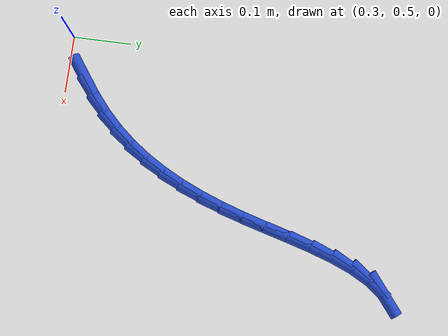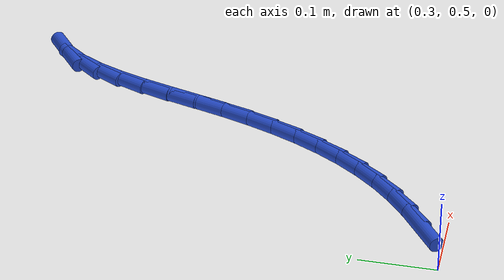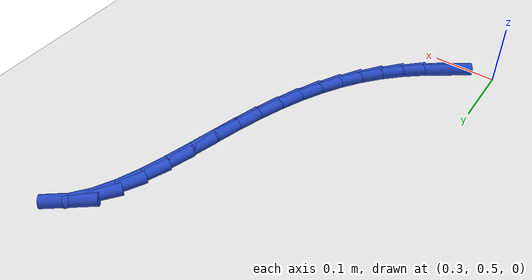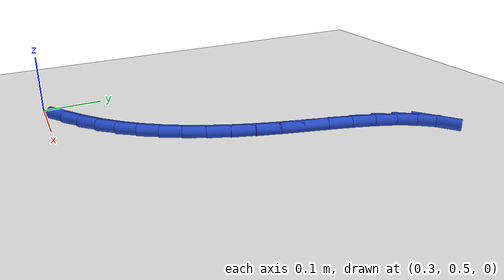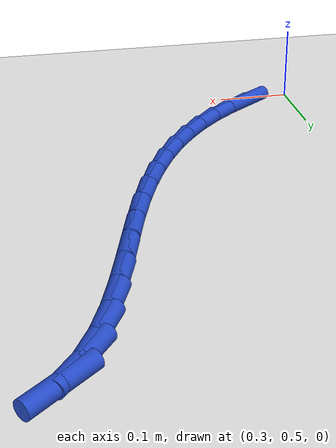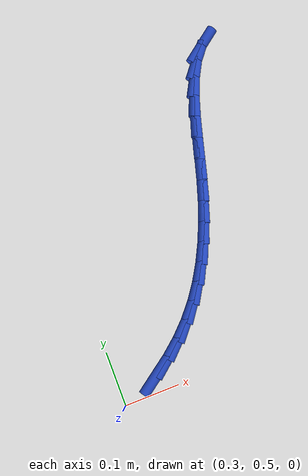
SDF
<sdf version="1.6">
 <world name="default">
  <model name="ground_plane">
   <static>1</static>
   <link name="link">
    <collision name="collision">
     <geometry><plane><normal>0 0 1</normal><size>100 100</size></plane></geometry>
     <surface><friction><ode><mu>100</mu><mu2>50</mu2></ode></friction></surface>
    </collision>
    <visual name="visual">
     <cast_shadows>0</cast_shadows>
     <geometry><plane><normal>0 0 1</normal><size>100 100</size></plane></geometry>
     <material>
      <script><uri>file://media/materials/scripts/gazebo.material</uri><name>Gazebo/WhiteGlow</name></script>
     </material>
    </visual>
   </link>
  </model>
  <model name="line">
   <link name="link_19">
    <pose>0.36988870935078455 0.5301280323944216 0.01 0 1.57 0.6141338083603641</pose>
    <collision name="collision">
     <geometry><cylinder><radius>0.01</radius><length>0.08</length></cylinder></geometry>
    </collision>
    <visual name="visual">
     <material>
      <script><name>Gazebo/Blue</name><uri>file://media/materials/scripts/gazebo.material</uri></script>
     </material>
     <geometry><cylinder><radius>0.01</radius><length>0.08</length></cylinder></geometry>
    </visual>
   </link>
   <link name="link_20">
    <pose>0.4005343756664804 0.5517359806297175 0.01 0 1.57 0.6838467115630937</pose>
    <collision name="collision">
     <geometry><cylinder><radius>0.01</radius><length>0.08</length></cylinder></geometry>
    </collision>
    <visual name="visual">
     <material>
      <script><name>Gazebo/Blue</name><uri>file://media/materials/scripts/gazebo.material</uri></script>
     </material>
     <geometry><cylinder><radius>0.01</radius><length>0.08</length></cylinder></geometry>
    </visual>
   </link>
   <link name="link_21">
    <pose>0.42903614757823405 0.5749661635200393 0.01 0 1.57 0.770908550478392</pose>
    <collision name="collision">
     <geometry><cylinder><radius>0.01</radius><length>0.08</length></cylinder></geometry>
    </collision>
    <visual name="visual">
     <material>
      <script><name>Gazebo/Blue</name><uri>file://media/materials/scripts/gazebo.material</uri></script>
     </material>
     <geometry><cylinder><radius>0.01</radius><length>0.08</length></cylinder></geometry>
    </visual>
   </link>
   <link name="link_22">
    <pose>0.4549531795687781 0.6001428159855304 0.01 0 1.57 0.8601882639126027</pose>
    <collision name="collision">
     <geometry><cylinder><radius>0.01</radius><length>0.08</length></cylinder></geometry>
    </collision>
    <visual name="visual">
     <material>
      <script><name>Gazebo/Blue</name><uri>file://media/materials/scripts/gazebo.material</uri></script>
     </material>
     <geometry><cylinder><radius>0.01</radius><length>0.08</length></cylinder></geometry>
    </visual>
   </link>
   <link name="link_23">
    <pose>0.47833253883078214 0.6273095899784907 0.01 0 1.57 0.9445348197051252</pose>
    <collision name="collision">
     <geometry><cylinder><radius>0.01</radius><length>0.08</length></cylinder></geometry>
    </collision>
    <visual name="visual">
     <material>
      <script><name>Gazebo/Blue</name><uri>file://media/materials/scripts/gazebo.material</uri></script>
     </material>
     <geometry><cylinder><radius>0.01</radius><length>0.08</length></cylinder></geometry>
    </visual>
   </link>
   <link name="link_24">
    <pose>0.49938728730046567 0.6564146791923055 0.01 0 1.57 1.0221511630316906</pose>
    <collision name="collision">
     <geometry><cylinder><radius>0.01</radius><length>0.08</length></cylinder></geometry>
    </collision>
    <visual name="visual">
     <material>
      <script><name>Gazebo/Blue</name><uri>file://media/materials/scripts/gazebo.material</uri></script>
     </material>
     <geometry><cylinder><radius>0.01</radius><length>0.08</length></cylinder></geometry>
    </visual>
   </link>
   <link name="link_25">
    <pose>0.5183306250798064 0.6874061978656613 0.01 0 1.57 1.0918629190837077</pose>
    <collision name="collision">
     <geometry><cylinder><radius>0.01</radius><length>0.08</length></cylinder></geometry>
    </collision>
    <visual name="visual">
     <material>
      <script><name>Gazebo/Blue</name><uri>file://media/materials/scripts/gazebo.material</uri></script>
     </material>
     <geometry><cylinder><radius>0.01</radius><length>0.08</length></cylinder></geometry>
    </visual>
   </link>
   <link name="link_26">
    <pose>0.5353757522707808 0.7202322602372438 0.01 0 1.57 1.1530917639785747</pose>
    <collision name="collision">
     <geometry><cylinder><radius>0.01</radius><length>0.08</length></cylinder></geometry>
    </collision>
    <visual name="visual">
     <material>
      <script><name>Gazebo/Blue</name><uri>file://media/materials/scripts/gazebo.material</uri></script>
     </material>
     <geometry><cylinder><radius>0.01</radius><length>0.08</length></cylinder></geometry>
    </visual>
   </link>
   <link name="link_27">
    <pose>0.5507358689753663 0.7548409805457393 0.01 0 1.57 1.2057438698655853</pose>
    <collision name="collision">
     <geometry><cylinder><radius>0.01</radius><length>0.08</length></cylinder></geometry>
    </collision>
    <visual name="visual">
     <material>
      <script><name>Gazebo/Blue</name><uri>file://media/materials/scripts/gazebo.material</uri></script>
     </material>
     <geometry><cylinder><radius>0.01</radius><length>0.08</length></cylinder></geometry>
    </visual>
   </link>
   <link name="link_28">
    <pose>0.5646241752955398 0.7911804730298336 0.01 0 1.57 1.2500663424024685</pose>
    <collision name="collision">
     <geometry><cylinder><radius>0.01</radius><length>0.08</length></cylinder></geometry>
    </collision>
    <visual name="visual">
     <material>
      <script><name>Gazebo/Blue</name><uri>file://media/materials/scripts/gazebo.material</uri></script>
     </material>
     <geometry><cylinder><radius>0.01</radius><length>0.08</length></cylinder></geometry>
    </visual>
   </link>
   <link name="link_29">
    <pose>0.5772538713332779 0.8291988519282122 0.01 0 1.57 1.2842068708518093</pose>
    <collision name="collision">
     <geometry><cylinder><radius>0.01</radius><length>0.08</length></cylinder></geometry>
    </collision>
    <visual name="visual">
     <material>
      <script><name>Gazebo/Blue</name><uri>file://media/materials/scripts/gazebo.material</uri></script>
     </material>
     <geometry><cylinder><radius>0.01</radius><length>0.08</length></cylinder></geometry>
    </visual>
   </link>
   <link name="link_30">
    <pose>0.5888965675219416 0.8687054875771452 0.01 0 1.57 1.2970618909761122</pose>
    <collision name="collision">
     <geometry><cylinder><radius>0.01</radius><length>0.08</length></cylinder></geometry>
    </collision>
    <visual name="visual">
     <material>
      <script><name>Gazebo/Blue</name><uri>file://media/materials/scripts/gazebo.material</uri></script>
     </material>
     <geometry><cylinder><radius>0.01</radius><length>0.08</length></cylinder></geometry>
    </visual>
   </link>
   <link name="link_31">
    <pose>0.6001417166011884 0.9087547694579026 0.01 0 1.57 1.2857001644294996</pose>
    <collision name="collision">
     <geometry><cylinder><radius>0.01</radius><length>0.08</length></cylinder></geometry>
    </collision>
    <visual name="visual">
     <material>
      <script><name>Gazebo/Blue</name><uri>file://media/materials/scripts/gazebo.material</uri></script>
     </material>
     <geometry><cylinder><radius>0.01</radius><length>0.08</length></cylinder></geometry>
    </visual>
   </link>
   <link name="link_32">
    <pose>0.6116863606278912 0.9481455267531703 0.01 0 1.57 1.2483030399106823</pose>
    <collision name="collision">
     <geometry><cylinder><radius>0.01</radius><length>0.08</length></cylinder></geometry>
    </collision>
    <visual name="visual">
     <material>
      <script><name>Gazebo/Blue</name><uri>file://media/materials/scripts/gazebo.material</uri></script>
     </material>
     <geometry><cylinder><radius>0.01</radius><length>0.08</length></cylinder></geometry>
    </visual>
   </link>
   <link name="link_33">
    <pose>0.6242276271953653 0.9856763854682249 0.01 0 1.57 1.1791563897353796</pose>
    <collision name="collision">
     <geometry><cylinder><radius>0.01</radius><length>0.08</length></cylinder></geometry>
    </collision>
    <visual name="visual">
     <material>
      <script><name>Gazebo/Blue</name><uri>file://media/materials/scripts/gazebo.material</uri></script>
     </material>
     <geometry><cylinder><radius>0.01</radius><length>0.08</length></cylinder></geometry>
    </visual>
   </link>
   <link name="link_34">
    <pose>0.6384626438969254 1.0201459716083427 0.01 0 1.57 1.0676461958618828</pose>
    <collision name="collision">
     <geometry><cylinder><radius>0.01</radius><length>0.08</length></cylinder></geometry>
    </collision>
    <visual name="visual">
     <material>
      <script><name>Gazebo/Blue</name><uri>file://media/materials/scripts/gazebo.material</uri></script>
     </material>
     <geometry><cylinder><radius>0.01</radius><length>0.08</length></cylinder></geometry>
    </visual>
   </link>
   <link name="link_35">
    <pose>0.6550885383258874 1.050352911178801 0.01 0 1.57 0.8980407543806458</pose>
    <collision name="collision">
     <geometry><cylinder><radius>0.01</radius><length>0.08</length></cylinder></geometry>
    </collision>
    <visual name="visual">
     <material>
      <script><name>Gazebo/Blue</name><uri>file://media/materials/scripts/gazebo.material</uri></script>
     </material>
     <geometry><cylinder><radius>0.01</radius><length>0.08</length></cylinder></geometry>
    </visual>
   </link>
   <link name="link_36">
    <pose>0.6748024380755661 1.0750958301848768 0.01 0 1.57 0.6565532783768415</pose>
    <collision name="collision">
     <geometry><cylinder><radius>0.01</radius><length>0.08</length></cylinder></geometry>
    </collision>
    <visual name="visual">
     <material>
      <script><name>Gazebo/Blue</name><uri>file://media/materials/scripts/gazebo.material</uri></script>
     </material>
     <geometry><cylinder><radius>0.01</radius><length>0.08</length></cylinder></geometry>
    </visual>
   </link>
  </model>
 </world>
</sdf>
